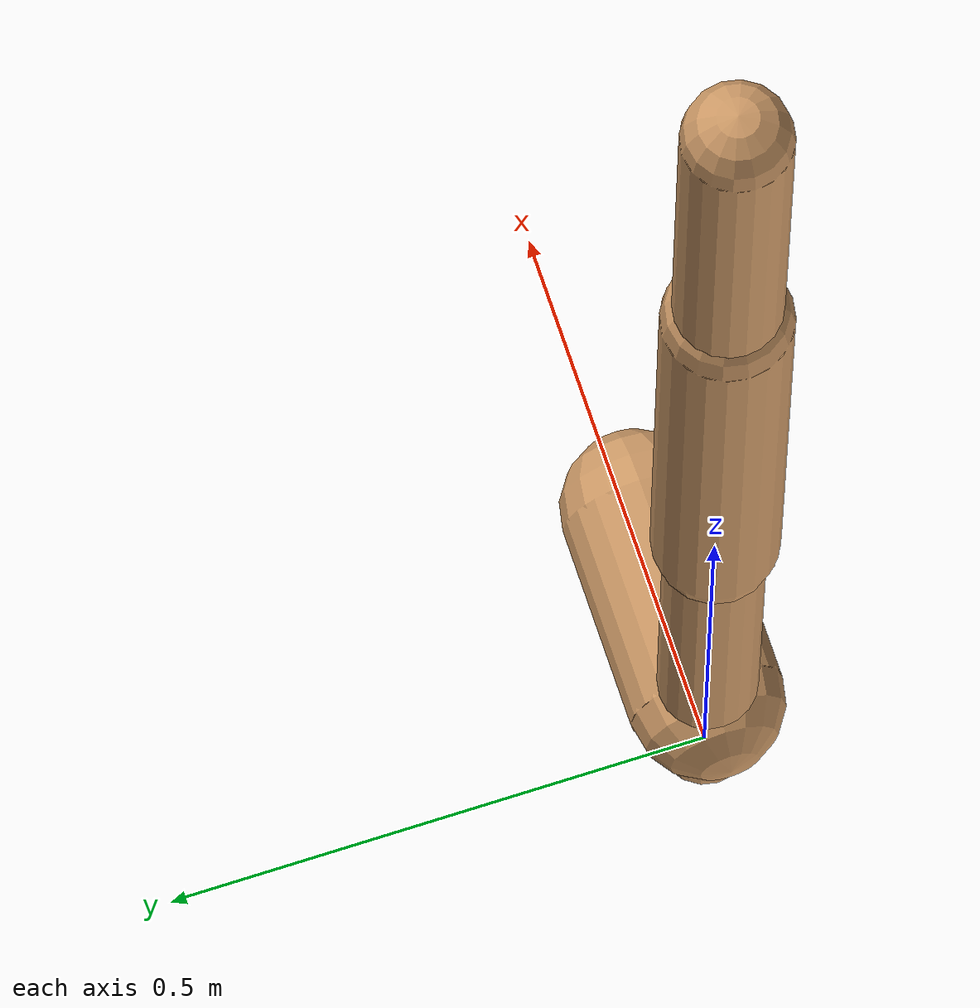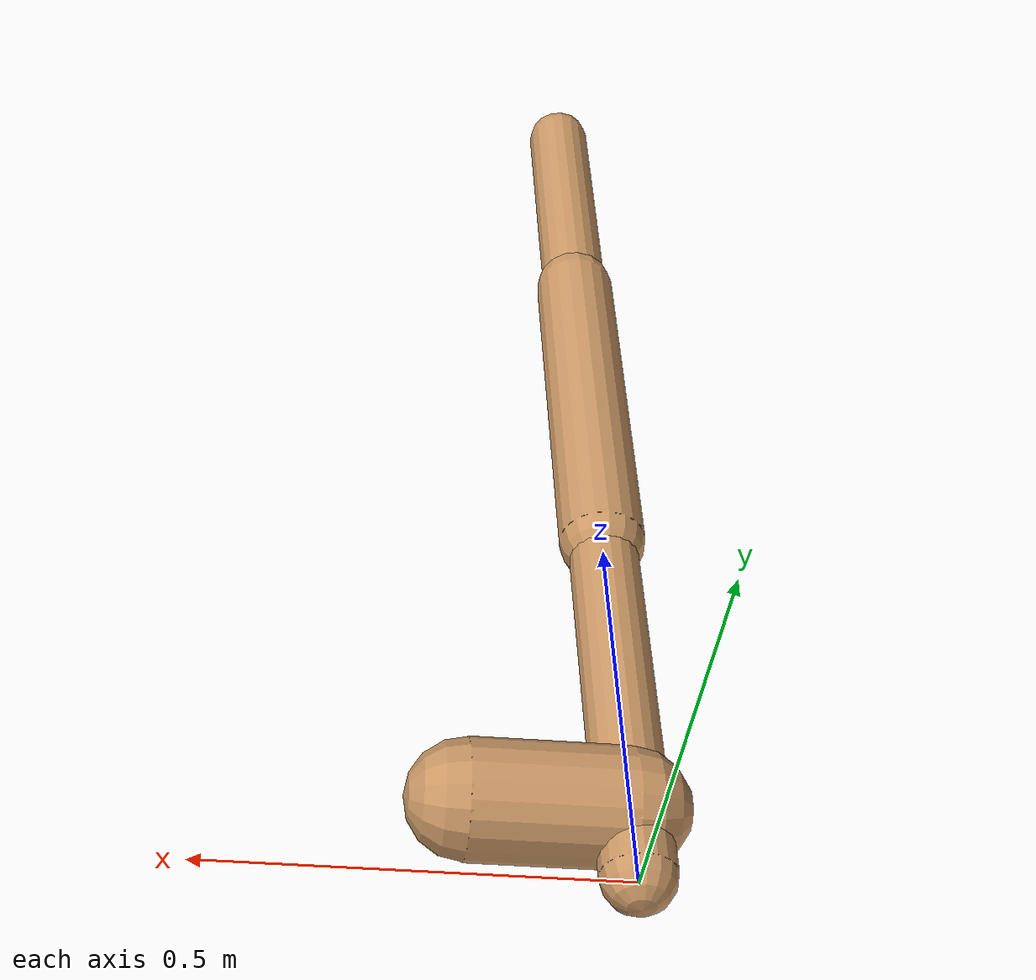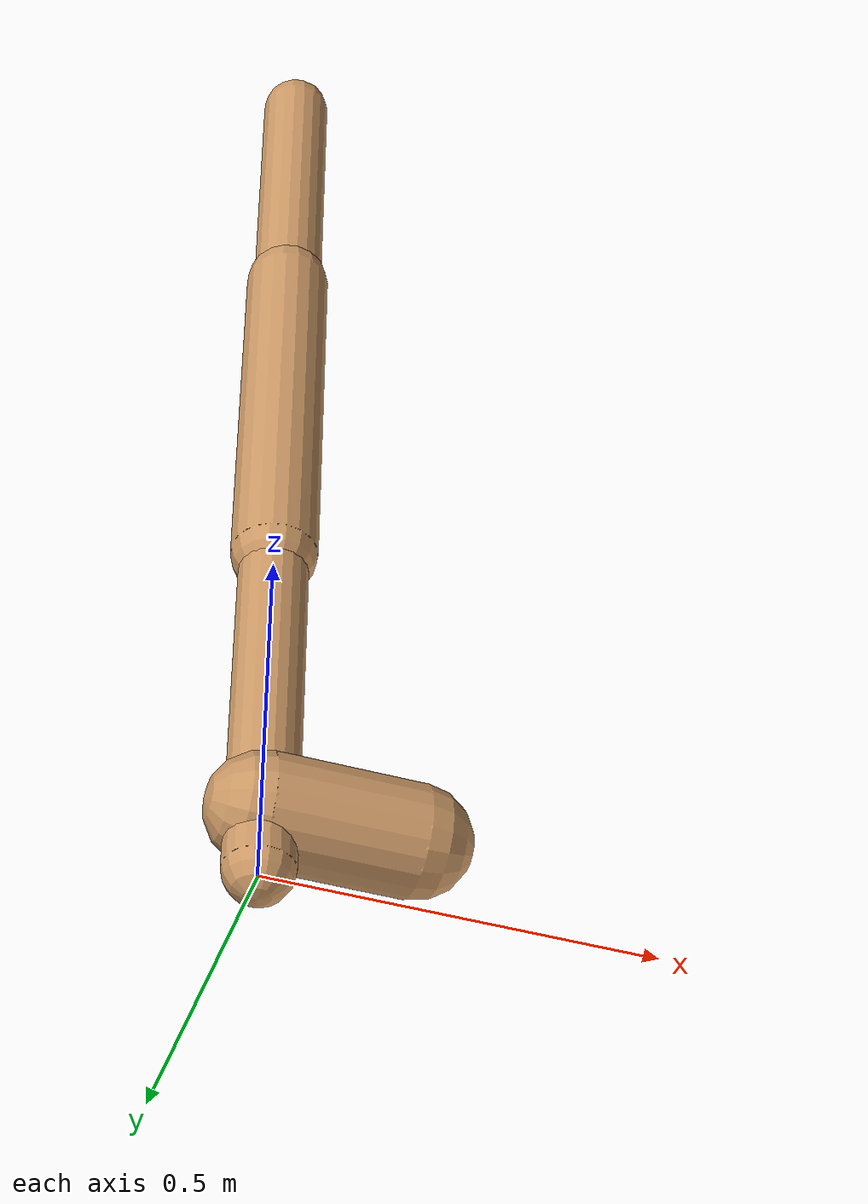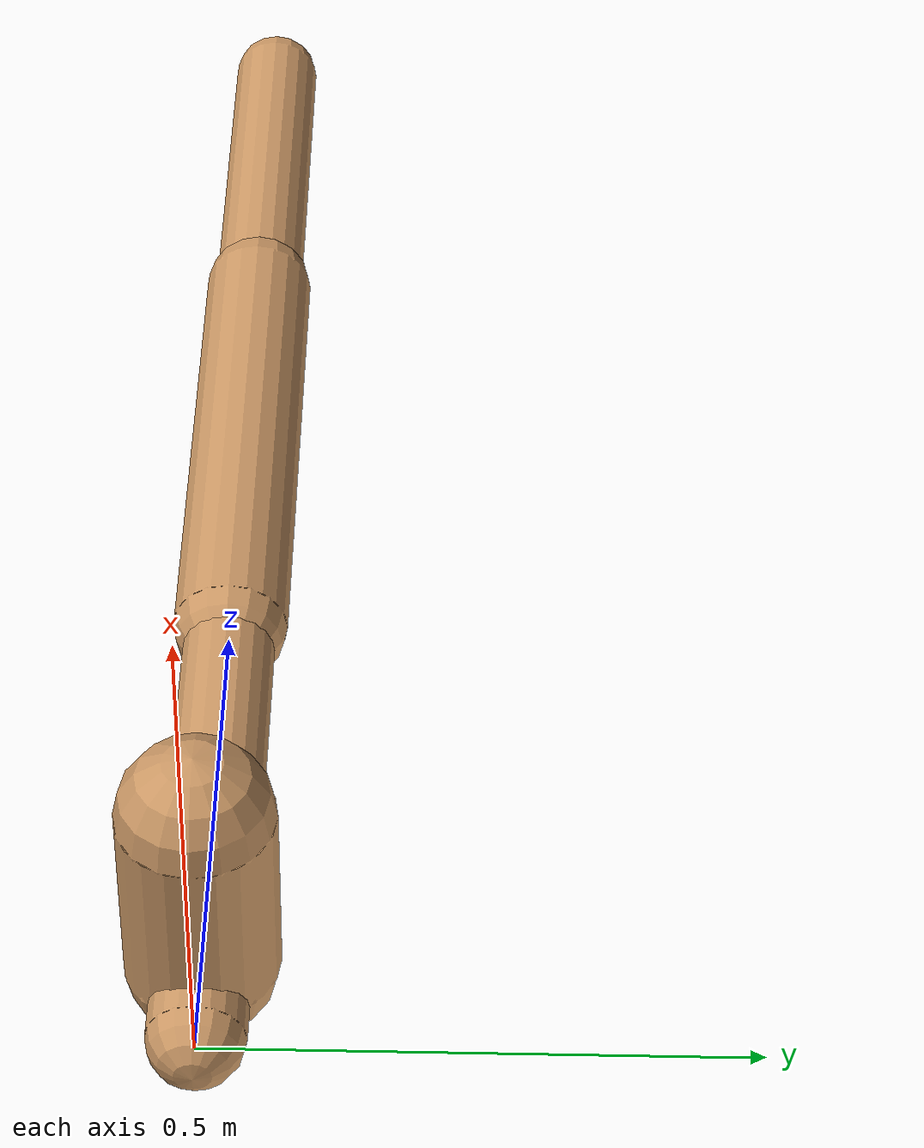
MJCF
<mujoco model="walker2d">
  <compiler angle="degree" coordinate="global" inertiafromgeom="true" />
  <default>
    <joint armature="0.01" damping=".1" limited="true" />
    <geom conaffinity="0" condim="3" contype="1" density="1000" friction="0.8 .1 .1" rgba="0.8 0.6 .4 1" />
  </default>
  <option integrator="RK4" timestep="0.002" />
  <worldbody>

    <body name="torso" pos="0 0 0.1709136322720105">
      <joint armature="0" axis="1 0 0" damping="0" limited="false" name="ignorex" pos="0 0 0" stiffness="0" type="slide" />
      <joint armature="0" axis="0 0 1" damping="0" limited="false" name="ignorez" pos="0 0 0" ref="1.25" stiffness="0" type="slide" />
      <joint armature="0" axis="0 1 0" damping="0" limited="false" name="ignorey" pos="0 0 0" stiffness="0" type="hinge" />
      <geom fromto="0 0 1.45 0 0 1.05" name="torso_geom" size="0.046825151510621346" type="capsule" />
      <body name="thigh">
        <joint axis="0 -1 0" name="thigh_joint" pos="0 0 1.05" range="-150 0" type="hinge" />
        <geom fromto="0.0 0.0 1.05 0.0 0.0 0.5190409110290476" name="thigh_geom" size="0.0564965506686885" type="capsule" />
        <body name="leg" pos="0.0 0.0 -0.08095908897095239">
          <joint axis="0 -1 0" name="leg_joint" pos="0 0 0.6" range="-150 0" type="hinge" />
          <geom fromto="0.0 0.0 0.6 0.0 0.0 0.010045456698941857" name="leg_geom" size="0.0451972405349508" type="capsule" />
          <body name="foot" pos="0.0 0.0 -0.08995454330105815">
            <joint axis="0 -1 0" name="foot_joint" pos="0 0 0.1" range="-45 45" type="hinge" />
            <geom fromto="0.0 0.0 0.1 0.1916497773286029 0.0 0.1" name="foot_geom" size="0.07105407015824944" type="capsule" />
          </body>
        </body>
      </body>

      <body name="thigh_left">
        <joint axis="0 -1 0" name="thigh_left_joint" pos="0 0 1.05" range="-150 0" type="hinge" />
        <geom fromto="0.0 0.0 1.05 0.0 0.0 0.5190409110290476" name="thigh_left_geom" rgba=".7 .3 .6 1" size="0.0564965506686885" type="capsule" />
        <body name="leg_left" pos="0.0 0.0 -0.08095908897095239">
          <joint axis="0 -1 0" name="leg_left_joint" pos="0 0 0.6" range="-150 0" type="hinge" />
          <geom fromto="0.0 0.0 0.6 0.0 0.0 0.010045456698941857" name="leg_left_geom" rgba=".7 .3 .6 1" size="0.0451972405349508" type="capsule" />
          <body name="foot_left" pos="0.0 0.0 -0.08995454330105815">
            <joint axis="0 -1 0" name="foot_left_joint" pos="0 0 0.1" range="-45 45" type="hinge" />
            <geom fromto="0.0 0.0 0.1 0.1916497773286029 0.0 0.1" name="foot_left_geom" rgba=".7 .3 .6 1" size="0.07105407015824944" type="capsule" />
          </body>
        </body>
      </body>
    </body>
  </worldbody>
  <actuator>

    <motor ctrllimited="true" ctrlrange="-1.0 1.0" gear="100" joint="thigh_joint" />
    <motor ctrllimited="true" ctrlrange="-1.0 1.0" gear="100" joint="leg_joint" />
    <motor ctrllimited="true" ctrlrange="-1.0 1.0" gear="100" joint="foot_joint" />
    <motor ctrllimited="true" ctrlrange="-1.0 1.0" gear="100" joint="thigh_left_joint" />
    <motor ctrllimited="true" ctrlrange="-1.0 1.0" gear="100" joint="leg_left_joint" />
    <motor ctrllimited="true" ctrlrange="-1.0 1.0" gear="100" joint="foot_left_joint" />

  </actuator>
</mujoco>
